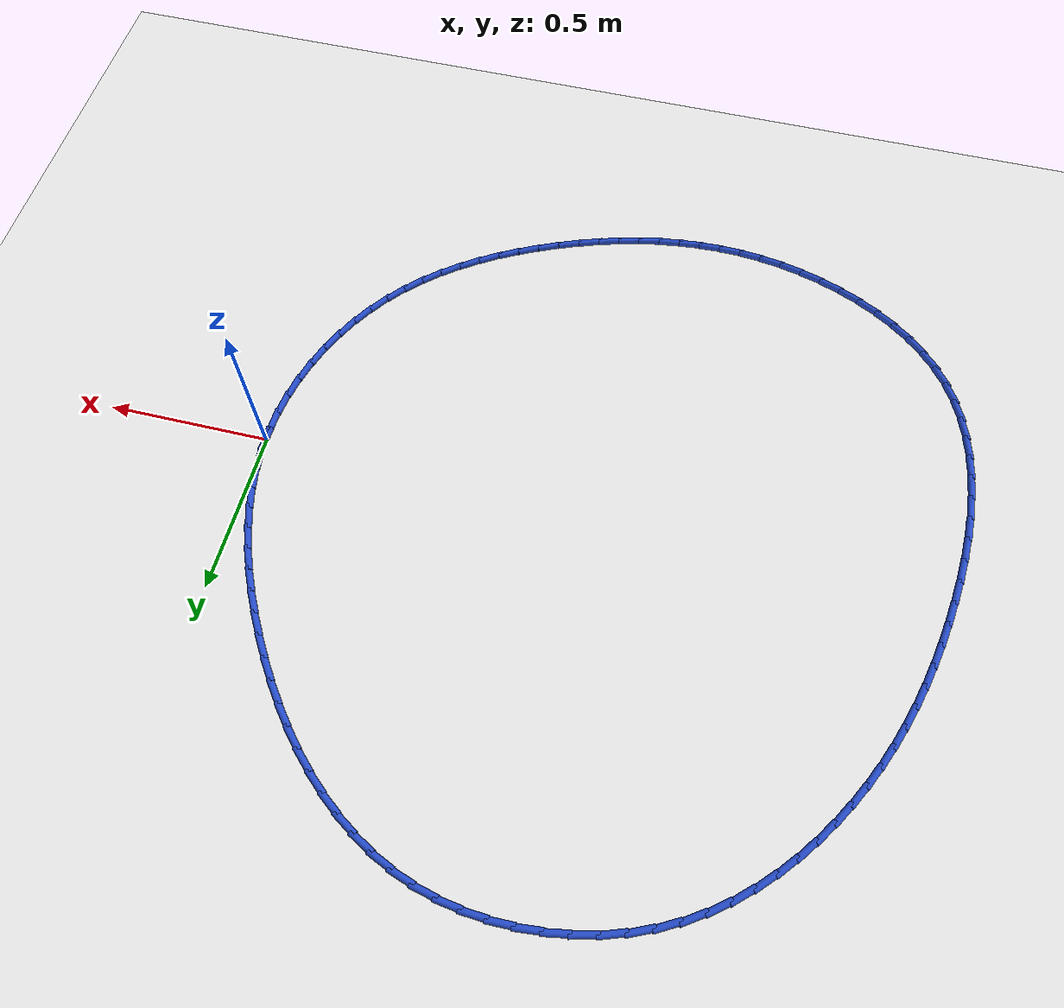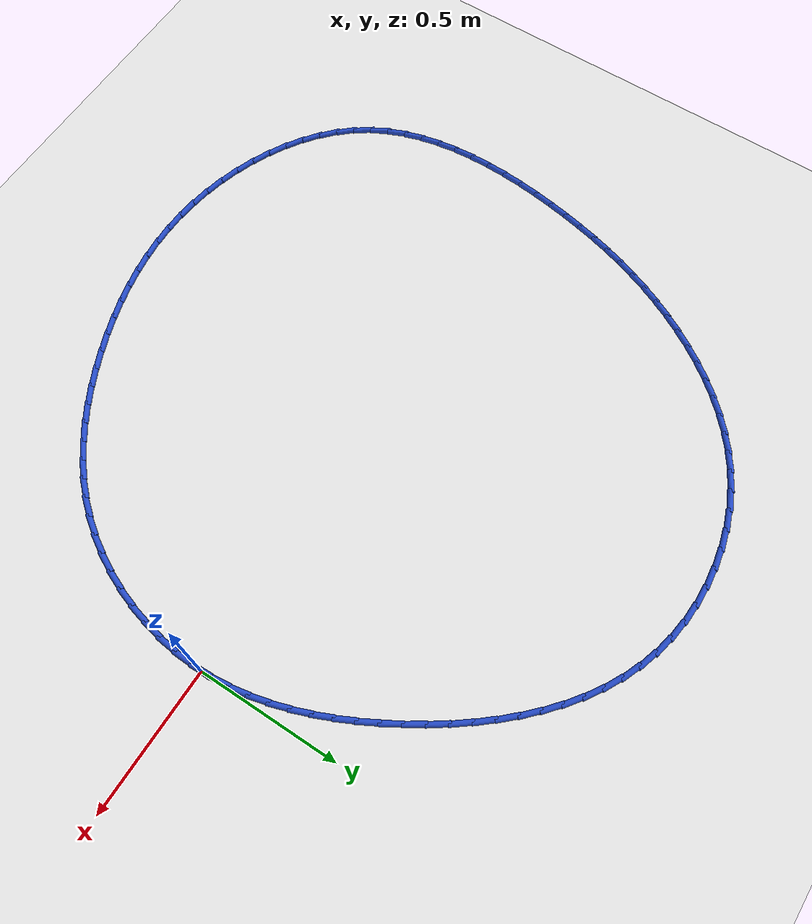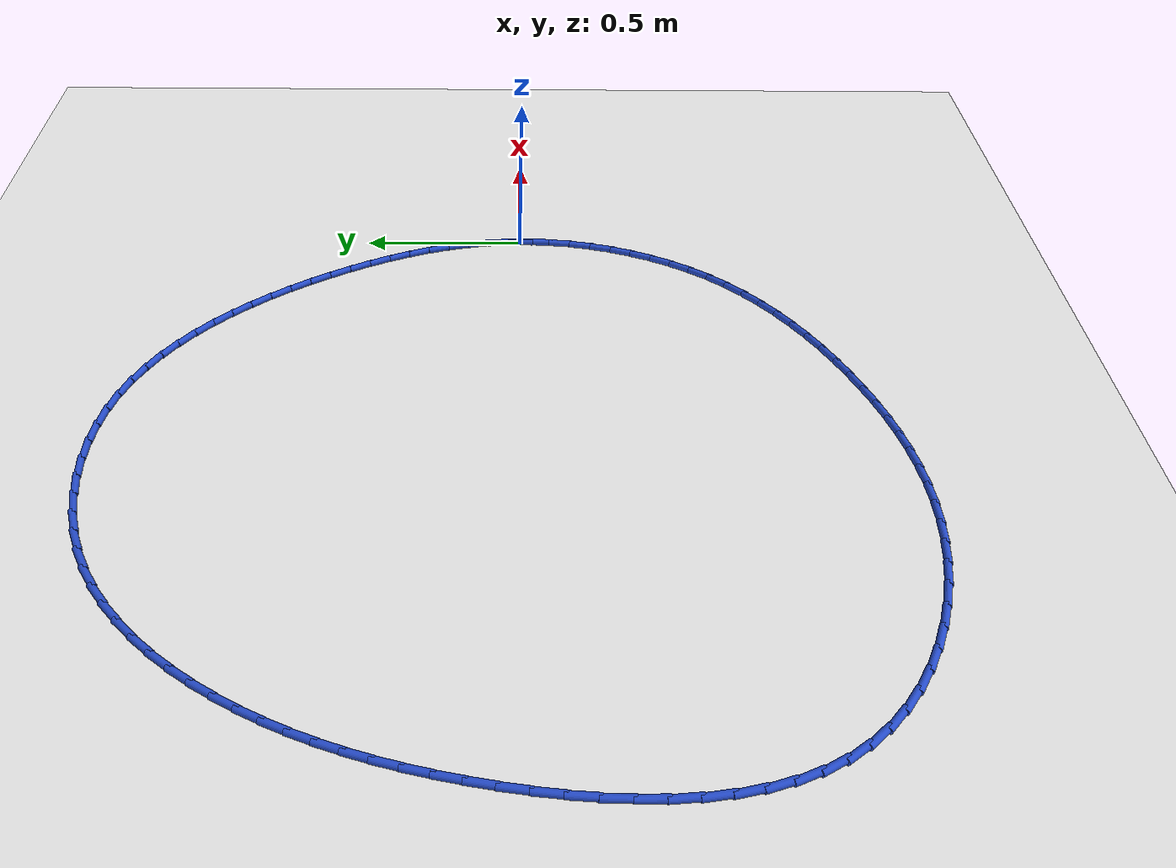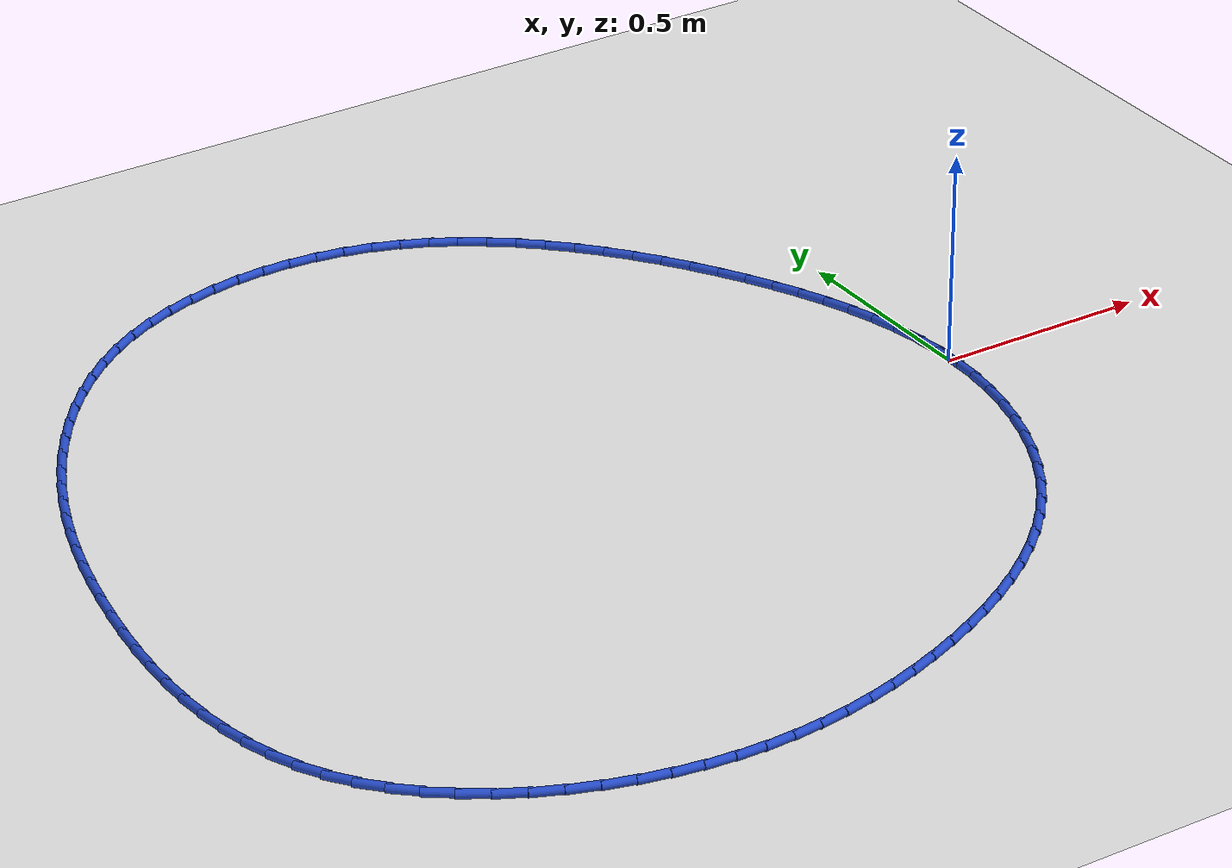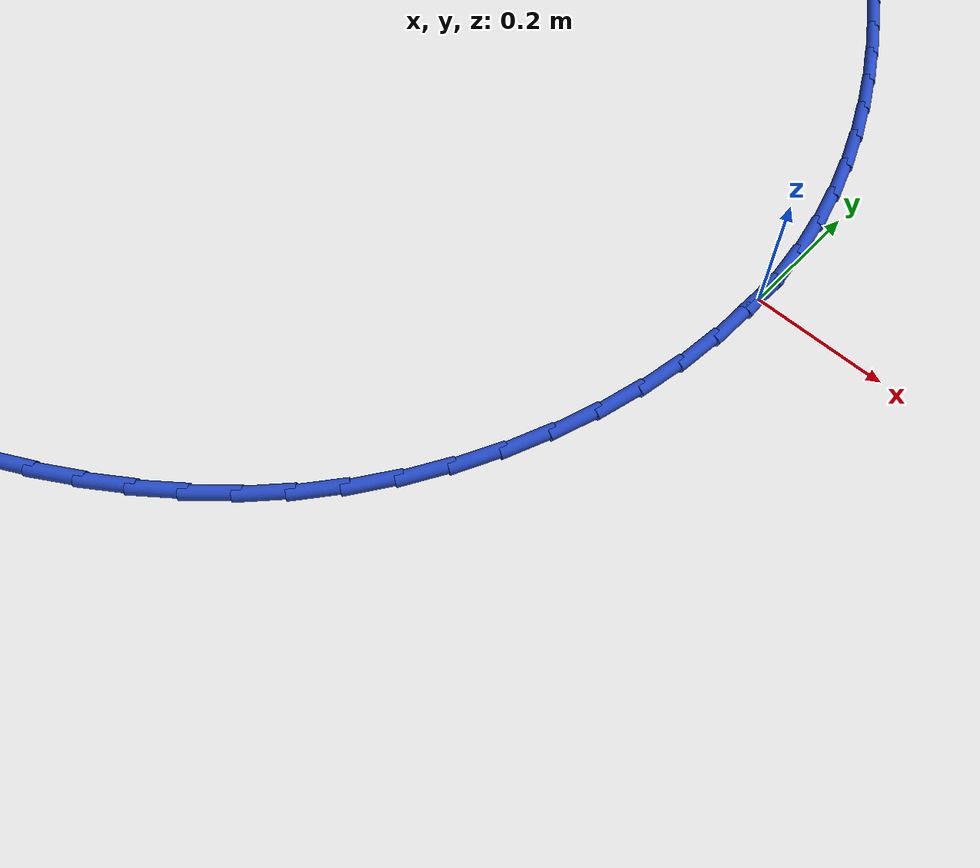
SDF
<sdf version="1.6">
 <world name="default">
  <light name="sun" type="directional">
   <pose>0 0 10 0 -0 0</pose>
   <diffuse>0.8 0.8 0.8 1</diffuse>
   <specular>0.2 0.2 0.2 1</specular>
   <attenuation>
    <range>1000</range>
    <constant>0.9</constant>
    <linear>0.01</linear>
    <quadratic>0.001</quadratic>
   </attenuation>
   <direction>-0.5 0.1 -0.9</direction>
  </light>
  <model name="ground_plane">
   <static>1</static>
   <link name="link">
    <collision name="collision">
     <geometry><plane><normal>0 0 1</normal><size>100 100</size></plane></geometry>
     <surface><friction><ode><mu>100</mu><mu2>50</mu2></ode></friction></surface>
    </collision>
    <visual name="visual">
     <cast_shadows>0</cast_shadows>
     <geometry><plane><normal>0 0 1</normal><size>100 100</size></plane></geometry>
     <material>
      <script><uri>file://media/materials/scripts/gazebo.material</uri><name>Gazebo/WhiteGlow</name></script>
     </material>
    </visual>
   </link>
  </model>
  <gravity>0 0 -9.8</gravity>
  <magnetic_field>6e-06 2.3e-05 -4.2e-05</magnetic_field>
  <atmosphere type="adiabatic"/>
  <physics name="default_physics" default="0" type="ode">
   <max_step_size>0.001</max_step_size>
   <real_time_factor>1</real_time_factor>
   <real_time_update_rate>1000</real_time_update_rate>
  </physics>
  <scene><ambient>0.4 0.4 0.4 1</ambient><background>0.7 0.7 0.7 1</background><shadows>1</shadows></scene>
  <spherical_coordinates>
   <surface_model>EARTH_WGS84</surface_model>
   <latitude_deg>0</latitude_deg>
   <longitude_deg>0</longitude_deg>
   <elevation>0</elevation>
   <heading_deg>0</heading_deg>
  </spherical_coordinates>
  <model name="line">
   <link name="link_0">
    <pose>4.5102810375396984e-17 2.7755575615628914e-17 0.01 0 1.57 -1.5138790250780465</pose>
    <collision name="collision">
     <geometry><cylinder><radius>0.01</radius><length>0.08</length></cylinder></geometry>
    </collision>
    <visual name="visual">
     <material>
      <script><name>Gazebo/Blue</name><uri>file://media/materials/scripts/gazebo.material</uri></script>
     </material>
     <geometry><cylinder><radius>0.01</radius><length>0.08</length></cylinder></geometry>
    </visual>
   </link>
   <link name="link_1">
    <pose>-0.0037908062595033852 0.06653006593493406 0.01 0 1.57 -1.440616513487576</pose>
    <collision name="collision">
     <geometry><cylinder><radius>0.01</radius><length>0.08</length></cylinder></geometry>
    </collision>
    <visual name="visual">
     <material>
      <script><name>Gazebo/Blue</name><uri>file://media/materials/scripts/gazebo.material</uri></script>
     </material>
     <geometry><cylinder><radius>0.01</radius><length>0.08</length></cylinder></geometry>
    </visual>
   </link>
   <link name="link_2">
    <pose>-0.012412451523280566 0.1323842631431642 0.01 0 1.57 -1.3717595087751593</pose>
    <collision name="collision">
     <geometry><cylinder><radius>0.01</radius><length>0.08</length></cylinder></geometry>
    </collision>
    <visual name="visual">
     <material>
      <script><name>Gazebo/Blue</name><uri>file://media/materials/scripts/gazebo.material</uri></script>
     </material>
     <geometry><cylinder><radius>0.01</radius><length>0.08</length></cylinder></geometry>
    </visual>
   </link>
   <link name="link_3">
    <pose>-0.025554663022745675 0.19753907107491728 0.01 0 1.57 -1.3077226489138265</pose>
    <collision name="collision">
     <geometry><cylinder><radius>0.01</radius><length>0.08</length></cylinder></geometry>
    </collision>
    <visual name="visual">
     <material>
      <script><name>Gazebo/Blue</name><uri>file://media/materials/scripts/gazebo.material</uri></script>
     </material>
     <geometry><cylinder><radius>0.01</radius><length>0.08</length></cylinder></geometry>
    </visual>
   </link>
   <link name="link_4">
    <pose>-0.04290716798931296 0.26197096918042034 0.01 0 1.57 -1.2487061292971016</pose>
    <collision name="collision">
     <geometry><cylinder><radius>0.01</radius><length>0.08</length></cylinder></geometry>
    </collision>
    <visual name="visual">
     <material>
      <script><name>Gazebo/Blue</name><uri>file://media/materials/scripts/gazebo.material</uri></script>
     </material>
     <geometry><cylinder><radius>0.01</radius><length>0.08</length></cylinder></geometry>
    </visual>
   </link>
   <link name="link_5">
    <pose>-0.06415969365439661 0.32565643690990026 0.01 0 1.57 -1.194736349183516</pose>
    <collision name="collision">
     <geometry><cylinder><radius>0.01</radius><length>0.08</length></cylinder></geometry>
    </collision>
    <visual name="visual">
     <material>
      <script><name>Gazebo/Blue</name><uri>file://media/materials/scripts/gazebo.material</uri></script>
     </material>
     <geometry><cylinder><radius>0.01</radius><length>0.08</length></cylinder></geometry>
    </visual>
   </link>
   <link name="link_6">
    <pose>-0.08900196724941087 0.388571953713584 0.01 0 1.57 -1.1457113877017253</pose>
    <collision name="collision">
     <geometry><cylinder><radius>0.01</radius><length>0.08</length></cylinder></geometry>
    </collision>
    <visual name="visual">
     <material>
      <script><name>Gazebo/Blue</name><uri>file://media/materials/scripts/gazebo.material</uri></script>
     </material>
     <geometry><cylinder><radius>0.01</radius><length>0.08</length></cylinder></geometry>
    </visual>
   </link>
   <link name="link_7">
    <pose>-0.11712371600576997 0.4506939990416985 0.01 0 1.57 -1.1014438807822047</pose>
    <collision name="collision">
     <geometry><cylinder><radius>0.01</radius><length>0.08</length></cylinder></geometry>
    </collision>
    <visual name="visual">
     <material>
      <script><name>Gazebo/Blue</name><uri>file://media/materials/scripts/gazebo.material</uri></script>
     </material>
     <geometry><cylinder><radius>0.01</radius><length>0.08</length></cylinder></geometry>
    </visual>
   </link>
   <link name="link_8">
    <pose>-0.14821466715488807 0.5119990523444707 0.01 0 1.57 -1.061697316212925</pose>
    <collision name="collision">
     <geometry><cylinder><radius>0.01</radius><length>0.08</length></cylinder></geometry>
    </collision>
    <visual name="visual">
     <material>
      <script><name>Gazebo/Blue</name><uri>file://media/materials/scripts/gazebo.material</uri></script>
     </material>
     <geometry><cylinder><radius>0.01</radius><length>0.08</length></cylinder></geometry>
    </visual>
   </link>
   <link name="link_9">
    <pose>-0.18196454792817943 0.5724635930721276 0.01 0 1.57 -1.0257608228890085</pose>
    <collision name="collision">
     <geometry><cylinder><radius>0.01</radius><length>0.08</length></cylinder></geometry>
    </collision>
    <visual name="visual">
     <material>
      <script><name>Gazebo/Blue</name><uri>file://media/materials/scripts/gazebo.material</uri></script>
     </material>
     <geometry><cylinder><radius>0.01</radius><length>0.08</length></cylinder></geometry>
    </visual>
   </link>
   <link name="link_10">
    <pose>-0.21808481513083838 0.6320389690984313 0.01 0 1.57 -0.9893192136138773</pose>
    <collision name="collision">
     <geometry><cylinder><radius>0.01</radius><length>0.08</length></cylinder></geometry>
    </collision>
    <visual name="visual">
     <material>
      <script><name>Gazebo/Blue</name><uri>file://media/materials/scripts/gazebo.material</uri></script>
     </material>
     <geometry><cylinder><radius>0.01</radius><length>0.08</length></cylinder></geometry>
    </visual>
   </link>
   <link name="link_11">
    <pose>-0.25647967868958976 0.690453597564049 0.01 0 1.57 -0.9498937773330084</pose>
    <collision name="collision">
     <geometry><cylinder><radius>0.01</radius><length>0.08</length></cylinder></geometry>
    </collision>
    <visual name="visual">
     <material>
      <script><name>Gazebo/Blue</name><uri>file://media/materials/scripts/gazebo.material</uri></script>
     </material>
     <geometry><cylinder><radius>0.01</radius><length>0.08</length></cylinder></geometry>
    </visual>
   </link>
   <link name="link_12">
    <pose>-0.2971541538646825 0.7473193080974794 0.01 0 1.57 -0.9070532457685015</pose>
    <collision name="collision">
     <geometry><cylinder><radius>0.01</radius><length>0.08</length></cylinder></geometry>
    </collision>
    <visual name="visual">
     <material>
      <script><name>Gazebo/Blue</name><uri>file://media/materials/scripts/gazebo.material</uri></script>
     </material>
     <geometry><cylinder><radius>0.01</radius><length>0.08</length></cylinder></geometry>
    </visual>
   </link>
   <link name="link_13">
    <pose>-0.34011413665101575 0.8022469117039169 0.01 0 1.57 -0.8603600837108331</pose>
    <collision name="collision">
     <geometry><cylinder><radius>0.01</radius><length>0.08</length></cylinder></geometry>
    </collision>
    <visual name="visual">
     <material>
      <script><name>Gazebo/Blue</name><uri>file://media/materials/scripts/gazebo.material</uri></script>
     </material>
     <geometry><cylinder><radius>0.01</radius><length>0.08</length></cylinder></geometry>
    </visual>
   </link>
   <link name="link_14">
    <pose>-0.38536552304348876 0.8548472193885576 0.01 0 1.57 -0.8093602870752454</pose>
    <collision name="collision">
     <geometry><cylinder><radius>0.01</radius><length>0.08</length></cylinder></geometry>
    </collision>
    <visual name="visual">
     <material>
      <script><name>Gazebo/Blue</name><uri>file://media/materials/scripts/gazebo.material</uri></script>
     </material>
     <geometry><cylinder><radius>0.01</radius><length>0.08</length></cylinder></geometry>
    </visual>
   </link>
   <link name="link_15">
    <pose>-0.4329142090370003 0.9047310421565955 0.01 0 1.57 -0.753599594689291</pose>
    <collision name="collision">
     <geometry><cylinder><radius>0.01</radius><length>0.08</length></cylinder></geometry>
    </collision>
    <visual name="visual">
     <material>
      <script><name>Gazebo/Blue</name><uri>file://media/materials/scripts/gazebo.material</uri></script>
     </material>
     <geometry><cylinder><radius>0.01</radius><length>0.08</length></cylinder></geometry>
    </visual>
   </link>
   <link name="link_16">
    <pose>-0.48276609062645 0.9515091910132265 0.01 0 1.57 -0.6926506569874684</pose>
    <collision name="collision">
     <geometry><cylinder><radius>0.01</radius><length>0.08</length></cylinder></geometry>
    </collision>
    <visual name="visual">
     <material>
      <script><name>Gazebo/Blue</name><uri>file://media/materials/scripts/gazebo.material</uri></script>
     </material>
     <geometry><cylinder><radius>0.01</radius><length>0.08</length></cylinder></geometry>
    </visual>
   </link>
   <link name="link_17">
    <pose>-0.5349270638067367 0.9947924769636458 0.01 0 1.57 -0.6261540858754838</pose>
    <collision name="collision">
     <geometry><cylinder><radius>0.01</radius><length>0.08</length></cylinder></geometry>
    </collision>
    <visual name="visual">
     <material>
      <script><name>Gazebo/Blue</name><uri>file://media/materials/scripts/gazebo.material</uri></script>
     </material>
     <geometry><cylinder><radius>0.01</radius><length>0.08</length></cylinder></geometry>
    </visual>
   </link>
   <link name="link_18">
    <pose>-0.5894030245727596 1.034191711013048 0.01 0 1.57 -0.5538751374664752</pose>
    <collision name="collision">
     <geometry><cylinder><radius>0.01</radius><length>0.08</length></cylinder></geometry>
    </collision>
    <visual name="visual">
     <material>
      <script><name>Gazebo/Blue</name><uri>file://media/materials/scripts/gazebo.material</uri></script>
     </material>
     <geometry><cylinder><radius>0.01</radius><length>0.08</length></cylinder></geometry>
    </visual>
   </link>
   <link name="link_19">
    <pose>-0.6461998689194178 1.0693177041666289 0.01 0 1.57 -0.4757745968063222</pose>
    <collision name="collision">
     <geometry><cylinder><radius>0.01</radius><length>0.08</length></cylinder></geometry>
    </collision>
    <visual name="visual">
     <material>
      <script><name>Gazebo/Blue</name><uri>file://media/materials/scripts/gazebo.material</uri></script>
     </material>
     <geometry><cylinder><radius>0.01</radius><length>0.08</length></cylinder></geometry>
    </visual>
   </link>
   <link name="link_20">
    <pose>-0.7053234928416107 1.0997812674295833 0.01 0 1.57 -0.39208659255169137</pose>
    <collision name="collision">
     <geometry><cylinder><radius>0.01</radius><length>0.08</length></cylinder></geometry>
    </collision>
    <visual name="visual">
     <material>
      <script><name>Gazebo/Blue</name><uri>file://media/materials/scripts/gazebo.material</uri></script>
     </material>
     <geometry><cylinder><radius>0.01</radius><length>0.08</length></cylinder></geometry>
    </visual>
   </link>
   <link name="link_21">
    <pose>-0.7667797923342371 1.1251932118071062 0.01 0 1.57 -0.3034933626081562</pose>
    <collision name="collision">
     <geometry><cylinder><radius>0.01</radius><length>0.08</length></cylinder></geometry>
    </collision>
    <visual name="visual">
     <material>
      <script><name>Gazebo/Blue</name><uri>file://media/materials/scripts/gazebo.material</uri></script>
     </material>
     <geometry><cylinder><radius>0.01</radius><length>0.08</length></cylinder></geometry>
    </visual>
   </link>
   <link name="link_22">
    <pose>-0.8305679590949822 1.1451696272609688 0.01 0 1.57 -0.21448057111811347</pose>
    <collision name="collision">
     <geometry><cylinder><radius>0.01</radius><length>0.08</length></cylinder></geometry>
    </collision>
    <visual name="visual">
     <material>
      <script><name>Gazebo/Blue</name><uri>file://media/materials/scripts/gazebo.material</uri></script>
     </material>
     <geometry><cylinder><radius>0.01</radius><length>0.08</length></cylinder></geometry>
    </visual>
   </link>
   <link name="link_23">
    <pose>-0.8964426183489318 1.1595191751362597 0.01 0 1.57 -0.12944275704404187</pose>
    <collision name="collision">
     <geometry><cylinder><radius>0.01</radius><length>0.08</length></cylinder></geometry>
    </collision>
    <visual name="visual">
     <material>
      <script><name>Gazebo/Blue</name><uri>file://media/materials/scripts/gazebo.material</uri></script>
     </material>
     <geometry><cylinder><radius>0.01</radius><length>0.08</length></cylinder></geometry>
    </visual>
   </link>
   <link name="link_24">
    <pose>-0.963849687256373 1.1682935931836278 0.01 0 1.57 -0.047744675560598845</pose>
    <collision name="collision">
     <geometry><cylinder><radius>0.01</radius><length>0.08</length></cylinder></geometry>
    </collision>
    <visual name="visual">
     <material>
      <script><name>Gazebo/Blue</name><uri>file://media/materials/scripts/gazebo.material</uri></script>
     </material>
     <geometry><cylinder><radius>0.01</radius><length>0.08</length></cylinder></geometry>
    </visual>
   </link>
   <link name="link_25">
    <pose>-1.0322153318207605 1.17156017119384 0.01 0 1.57 0.03161070363495633</pose>
    <collision name="collision">
     <geometry><cylinder><radius>0.01</radius><length>0.08</length></cylinder></geometry>
    </collision>
    <visual name="visual">
     <material>
      <script><name>Gazebo/Blue</name><uri>file://media/materials/scripts/gazebo.material</uri></script>
     </material>
     <geometry><cylinder><radius>0.01</radius><length>0.08</length></cylinder></geometry>
    </visual>
   </link>
   <link name="link_26">
    <pose>-1.1009657180455479 1.1693861989576608 0.01 0 1.57 0.10963864835037476</pose>
    <collision name="collision">
     <geometry><cylinder><radius>0.01</radius><length>0.08</length></cylinder></geometry>
    </collision>
    <visual name="visual">
     <material>
      <script><name>Gazebo/Blue</name><uri>file://media/materials/scripts/gazebo.material</uri></script>
     </material>
     <geometry><cylinder><radius>0.01</radius><length>0.08</length></cylinder></geometry>
    </visual>
   </link>
   <link name="link_27">
    <pose>-1.1695270119341914 1.1618389662658597 0.01 0 1.57 0.18735639007442112</pose>
    <collision name="collision">
     <geometry><cylinder><radius>0.01</radius><length>0.08</length></cylinder></geometry>
    </collision>
    <visual name="visual">
     <material>
      <script><name>Gazebo/Blue</name><uri>file://media/materials/scripts/gazebo.material</uri></script>
     </material>
     <geometry><cylinder><radius>0.01</radius><length>0.08</length></cylinder></geometry>
    </visual>
   </link>
   <link name="link_28">
    <pose>-1.2373253794901444 1.1489857629092013 0.01 0 1.57 0.26577570926887256</pose>
    <collision name="collision">
     <geometry><cylinder><radius>0.01</radius><length>0.08</length></cylinder></geometry>
    </collision>
    <visual name="visual">
     <material>
      <script><name>Gazebo/Blue</name><uri>file://media/materials/scripts/gazebo.material</uri></script>
     </material>
     <geometry><cylinder><radius>0.01</radius><length>0.08</length></cylinder></geometry>
    </visual>
   </link>
   <link name="link_29">
    <pose>-1.303786986716862 1.1308938786784526 0.01 0 1.57 0.3458971698614333</pose>
    <collision name="collision">
     <geometry><cylinder><radius>0.01</radius><length>0.08</length></cylinder></geometry>
    </collision>
    <visual name="visual">
     <material>
      <script><name>Gazebo/Blue</name><uri>file://media/materials/scripts/gazebo.material</uri></script>
     </material>
     <geometry><cylinder><radius>0.01</radius><length>0.08</length></cylinder></geometry>
    </visual>
   </link>
   <link name="link_30">
    <pose>-1.3683379996177985 1.1076306033643795 0.01 0 1.57 0.42869914108706814</pose>
    <collision name="collision">
     <geometry><cylinder><radius>0.01</radius><length>0.08</length></cylinder></geometry>
    </collision>
    <visual name="visual">
     <material>
      <script><name>Gazebo/Blue</name><uri>file://media/materials/scripts/gazebo.material</uri></script>
     </material>
     <geometry><cylinder><radius>0.01</radius><length>0.08</length></cylinder></geometry>
    </visual>
   </link>
   <link name="link_31">
    <pose>-1.4304045841964093 1.0792632267577495 0.01 0 1.57 0.514240895334869</pose>
    <collision name="collision">
     <geometry><cylinder><radius>0.01</radius><length>0.08</length></cylinder></geometry>
    </collision>
    <visual name="visual">
     <material>
      <script><name>Gazebo/Blue</name><uri>file://media/materials/scripts/gazebo.material</uri></script>
     </material>
     <geometry><cylinder><radius>0.01</radius><length>0.08</length></cylinder></geometry>
    </visual>
   </link>
   <link name="link_32">
    <pose>-1.4894688483794822 1.045895474090629 0.01 0 1.57 0.597008880639296</pose>
    <collision name="collision">
     <geometry><cylinder><radius>0.01</radius><length>0.08</length></cylinder></geometry>
    </collision>
    <visual name="visual">
     <material>
      <script><name>Gazebo/Blue</name><uri>file://media/materials/scripts/gazebo.material</uri></script>
     </material>
     <geometry><cylinder><radius>0.01</radius><length>0.08</length></cylinder></geometry>
    </visual>
   </link>
   <link name="link_33">
    <pose>-1.5453946062446733 1.0078796789950977 0.01 0 1.57 0.6742708848020089</pose>
    <collision name="collision">
     <geometry><cylinder><radius>0.01</radius><length>0.08</length></cylinder></geometry>
    </collision>
    <visual name="visual">
     <material>
      <script><name>Gazebo/Blue</name><uri>file://media/materials/scripts/gazebo.material</uri></script>
     </material>
     <geometry><cylinder><radius>0.01</radius><length>0.08</length></cylinder></geometry>
    </visual>
   </link>
   <link name="link_34">
    <pose>-1.598205077951417 0.9656719976139645 0.01 0 1.57 0.745947647572981</pose>
    <collision name="collision">
     <geometry><cylinder><radius>0.01</radius><length>0.08</length></cylinder></geometry>
    </collision>
    <visual name="visual">
     <material>
      <script><name>Gazebo/Blue</name><uri>file://media/materials/scripts/gazebo.material</uri></script>
     </material>
     <geometry><cylinder><radius>0.01</radius><length>0.08</length></cylinder></geometry>
    </visual>
   </link>
   <link name="link_35">
    <pose>-1.6479240167145717 0.9197289332734824 0.01 0 1.57 0.8122061938033714</pose>
    <collision name="collision">
     <geometry><cylinder><radius>0.01</radius><length>0.08</length></cylinder></geometry>
    </collision>
    <visual name="visual">
     <material>
      <script><name>Gazebo/Blue</name><uri>file://media/materials/scripts/gazebo.material</uri></script>
     </material>
     <geometry><cylinder><radius>0.01</radius><length>0.08</length></cylinder></geometry>
    </visual>
   </link>
   <link name="link_36">
    <pose>-1.6945751757489973 0.8705069892999056 0.01 0 1.57 0.8733780844036618</pose>
    <collision name="collision">
     <geometry><cylinder><radius>0.01</radius><length>0.08</length></cylinder></geometry>
    </collision>
    <visual name="visual">
     <material>
      <script><name>Gazebo/Blue</name><uri>file://media/materials/scripts/gazebo.material</uri></script>
     </material>
     <geometry><cylinder><radius>0.01</radius><length>0.08</length></cylinder></geometry>
    </visual>
   </link>
   <link name="link_37">
    <pose>-1.7381823082695527 0.8184626690194859 0.01 0 1.57 0.9298972727719739</pose>
    <collision name="collision">
     <geometry><cylinder><radius>0.01</radius><length>0.08</length></cylinder></geometry>
    </collision>
    <visual name="visual">
     <material>
      <script><name>Gazebo/Blue</name><uri>file://media/materials/scripts/gazebo.material</uri></script>
     </material>
     <geometry><cylinder><radius>0.01</radius><length>0.08</length></cylinder></geometry>
    </visual>
   </link>
   <link name="link_38">
    <pose>-1.7787691674910981 0.7640524757584781 0.01 0 1.57 0.9822534925984464</pose>
    <collision name="collision">
     <geometry><cylinder><radius>0.01</radius><length>0.08</length></cylinder></geometry>
    </collision>
    <visual name="visual">
     <material>
      <script><name>Gazebo/Blue</name><uri>file://media/materials/scripts/gazebo.material</uri></script>
     </material>
     <geometry><cylinder><radius>0.01</radius><length>0.08</length></cylinder></geometry>
    </visual>
   </link>
   <link name="link_39">
    <pose>-1.8163595066284919 0.7077329128431347 0.01 0 1.57 1.0309610324845924</pose>
    <collision name="collision">
     <geometry><cylinder><radius>0.01</radius><length>0.08</length></cylinder></geometry>
    </collision>
    <visual name="visual">
     <material>
      <script><name>Gazebo/Blue</name><uri>file://media/materials/scripts/gazebo.material</uri></script>
     </material>
     <geometry><cylinder><radius>0.01</radius><length>0.08</length></cylinder></geometry>
    </visual>
   </link>
   <link name="link_40">
    <pose>-1.8509770788965936 0.649960483599709 0.01 0 1.57 1.0767021792855922</pose>
    <collision name="collision">
     <geometry><cylinder><radius>0.01</radius><length>0.08</length></cylinder></geometry>
    </collision>
    <visual name="visual">
     <material>
      <script><name>Gazebo/Blue</name><uri>file://media/materials/scripts/gazebo.material</uri></script>
     </material>
     <geometry><cylinder><radius>0.01</radius><length>0.08</length></cylinder></geometry>
    </visual>
   </link>
   <link name="link_41">
    <pose>-1.8826555807927532 0.5911505061282039 0.01 0 1.57 1.1209795610305064</pose>
    <collision name="collision">
     <geometry><cylinder><radius>0.01</radius><length>0.08</length></cylinder></geometry>
    </collision>
    <visual name="visual">
     <material>
      <script><name>Gazebo/Blue</name><uri>file://media/materials/scripts/gazebo.material</uri></script>
     </material>
     <geometry><cylinder><radius>0.01</radius><length>0.08</length></cylinder></geometry>
    </visual>
   </link>
   <link name="link_42">
    <pose>-1.9115062467062816 0.5313971354090732 0.01 0 1.57 1.1640523729611483</pose>
    <collision name="collision">
     <geometry><cylinder><radius>0.01</radius><length>0.08</length></cylinder></geometry>
    </collision>
    <visual name="visual">
     <material>
      <script><name>Gazebo/Blue</name><uri>file://media/materials/scripts/gazebo.material</uri></script>
     </material>
     <geometry><cylinder><radius>0.01</radius><length>0.08</length></cylinder></geometry>
    </visual>
   </link>
   <link name="link_43">
    <pose>-1.9376767146473106 0.4706437420755352 0.01 0 1.57 1.2055309007803707</pose>
    <collision name="collision">
     <geometry><cylinder><radius>0.01</radius><length>0.08</length></cylinder></geometry>
    </collision>
    <visual name="visual">
     <material>
      <script><name>Gazebo/Blue</name><uri>file://media/materials/scripts/gazebo.material</uri></script>
     </material>
     <geometry><cylinder><radius>0.01</radius><length>0.08</length></cylinder></geometry>
    </visual>
   </link>
   <link name="link_44">
    <pose>-1.9613148328416992 0.4088328260440795 0.01 0 1.57 1.2450706206895135</pose>
    <collision name="collision">
     <geometry><cylinder><radius>0.01</radius><length>0.08</length></cylinder></geometry>
    </collision>
    <visual name="visual">
     <material>
      <script><name>Gazebo/Blue</name><uri>file://media/materials/scripts/gazebo.material</uri></script>
     </material>
     <geometry><cylinder><radius>0.01</radius><length>0.08</length></cylinder></geometry>
    </visual>
   </link>
   <link name="link_45">
    <pose>-1.9825684495153066 0.34590688723119584 0.01 0 1.57 1.2823848568801948</pose>
    <collision name="collision">
     <geometry><cylinder><radius>0.01</radius><length>0.08</length></cylinder></geometry>
    </collision>
    <visual name="visual">
     <material>
      <script><name>Gazebo/Blue</name><uri>file://media/materials/scripts/gazebo.material</uri></script>
     </material>
     <geometry><cylinder><radius>0.01</radius><length>0.08</length></cylinder></geometry>
    </visual>
   </link>
   <link name="link_46">
    <pose>-2.0015854128939954 0.2818084255533738 0.01 0 1.57 1.3172492612114688</pose>
    <collision name="collision">
     <geometry><cylinder><radius>0.01</radius><length>0.08</length></cylinder></geometry>
    </collision>
    <visual name="visual">
     <material>
      <script><name>Gazebo/Blue</name><uri>file://media/materials/scripts/gazebo.material</uri></script>
     </material>
     <geometry><cylinder><radius>0.01</radius><length>0.08</length></cylinder></geometry>
    </visual>
   </link>
   <link name="link_47">
    <pose>-2.0185135712036244 0.21647994092710324 0.01 0 1.57 1.3495018915070425</pose>
    <collision name="collision">
     <geometry><cylinder><radius>0.01</radius><length>0.08</length></cylinder></geometry>
    </collision>
    <visual name="visual">
     <material>
      <script><name>Gazebo/Blue</name><uri>file://media/materials/scripts/gazebo.material</uri></script>
     </material>
     <geometry><cylinder><radius>0.01</radius><length>0.08</length></cylinder></geometry>
    </visual>
   </link>
   <link name="link_48">
    <pose>-2.0335007726700542 0.14986393326887398 0.01 0 1.57 1.3790397305851214</pose>
    <collision name="collision">
     <geometry><cylinder><radius>0.01</radius><length>0.08</length></cylinder></geometry>
    </collision>
    <visual name="visual">
     <material>
      <script><name>Gazebo/Blue</name><uri>file://media/materials/scripts/gazebo.material</uri></script>
     </material>
     <geometry><cylinder><radius>0.01</radius><length>0.08</length></cylinder></geometry>
    </visual>
   </link>
   <link name="link_49">
    <pose>-2.046694864430353 0.08190290348550551 0.01 0 1.57 1.406965246591515</pose>
    <collision name="collision">
     <geometry><cylinder><radius>0.01</radius><length>0.08</length></cylinder></geometry>
    </collision>
    <visual name="visual">
     <material>
      <script><name>Gazebo/Blue</name><uri>file://media/materials/scripts/gazebo.material</uri></script>
     </material>
     <geometry><cylinder><radius>0.01</radius><length>0.08</length></cylinder></geometry>
    </visual>
   </link>
   <link name="link_50">
    <pose>-2.0581470067742105 0.012627295700135637 0.01 0 1.57 1.437739512200554</pose>
    <collision name="collision">
     <geometry><cylinder><radius>0.01</radius><length>0.08</length></cylinder></geometry>
    </collision>
    <visual name="visual">
     <material>
      <script><name>Gazebo/Blue</name><uri>file://media/materials/scripts/gazebo.material</uri></script>
     </material>
     <geometry><cylinder><radius>0.01</radius><length>0.08</length></cylinder></geometry>
    </visual>
   </link>
   <link name="link_51">
    <pose>-2.06754730512021 -0.05760404217916781 0.01 0 1.57 1.4728192765135144</pose>
    <collision name="collision">
     <geometry><cylinder><radius>0.01</radius><length>0.08</length></cylinder></geometry>
    </collision>
    <visual name="visual">
     <material>
      <script><name>Gazebo/Blue</name><uri>file://media/materials/scripts/gazebo.material</uri></script>
     </material>
     <geometry><cylinder><radius>0.01</radius><length>0.08</length></cylinder></geometry>
    </visual>
   </link>
   <link name="link_52">
    <pose>-2.0745016028982017 -0.12835562027592554 0.01 0 1.57 1.5127819704981198</pose>
    <collision name="collision">
     <geometry><cylinder><radius>0.01</radius><length>0.08</length></cylinder></geometry>
    </collision>
    <visual name="visual">
     <material>
      <script><name>Gazebo/Blue</name><uri>file://media/materials/scripts/gazebo.material</uri></script>
     </material>
     <geometry><cylinder><radius>0.01</radius><length>0.08</length></cylinder></geometry>
    </visual>
   </link>
   <link name="link_53">
    <pose>-2.0786157435380366 -0.19919194871365842 0.01 0 1.57 1.5583146088383473</pose>
    <collision name="collision">
     <geometry><cylinder><radius>0.01</radius><length>0.08</length></cylinder></geometry>
    </collision>
    <visual name="visual">
     <material>
      <script><name>Gazebo/Blue</name><uri>file://media/materials/scripts/gazebo.material</uri></script>
     </material>
     <geometry><cylinder><radius>0.01</radius><length>0.08</length></cylinder></geometry>
    </visual>
   </link>
   <link name="link_54">
    <pose>-2.0794955704695655 -0.2696775376158871 0.01 0 1.57 -1.5313810463463093</pose>
    <collision name="collision">
     <geometry><cylinder><radius>0.01</radius><length>0.08</length></cylinder></geometry>
    </collision>
    <visual name="visual">
     <material>
      <script><name>Gazebo/Blue</name><uri>file://media/materials/scripts/gazebo.material</uri></script>
     </material>
     <geometry><cylinder><radius>0.01</radius><length>0.08</length></cylinder></geometry>
    </visual>
   </link>
   <link name="link_55">
    <pose>-2.076746927122637 -0.3393768971061323 0.01 0 1.57 -1.4722337989647178</pose>
    <collision name="collision">
     <geometry><cylinder><radius>0.01</radius><length>0.08</length></cylinder></geometry>
    </collision>
    <visual name="visual">
     <material>
      <script><name>Gazebo/Blue</name><uri>file://media/materials/scripts/gazebo.material</uri></script>
     </material>
     <geometry><cylinder><radius>0.01</radius><length>0.08</length></cylinder></geometry>
    </visual>
   </link>
   <link name="link_56">
    <pose>-2.0699756569271037 -0.4078545373079147 0.01 0 1.57 -1.4049005427495669</pose>
    <collision name="collision">
     <geometry><cylinder><radius>0.01</radius><length>0.08</length></cylinder></geometry>
    </collision>
    <visual name="visual">
     <material>
      <script><name>Gazebo/Blue</name><uri>file://media/materials/scripts/gazebo.material</uri></script>
     </material>
     <geometry><cylinder><radius>0.01</radius><length>0.08</length></cylinder></geometry>
    </visual>
   </link>
   <link name="link_57">
    <pose>-2.0587876033128154 -0.47467496834475553 0.01 0 1.57 -1.3284794659420665</pose>
    <collision name="collision">
     <geometry><cylinder><radius>0.01</radius><length>0.08</length></cylinder></geometry>
    </collision>
    <visual name="visual">
     <material>
      <script><name>Gazebo/Blue</name><uri>file://media/materials/scripts/gazebo.material</uri></script>
     </material>
     <geometry><cylinder><radius>0.01</radius><length>0.08</length></cylinder></geometry>
    </visual>
   </link>
   <link name="link_58">
    <pose>-2.0427886097096217 -0.5394027003401743 0.01 0 1.57 -1.2422474703870596</pose>
    <collision name="collision">
     <geometry><cylinder><radius>0.01</radius><length>0.08</length></cylinder></geometry>
    </collision>
    <visual name="visual">
     <material>
      <script><name>Gazebo/Blue</name><uri>file://media/materials/scripts/gazebo.material</uri></script>
     </material>
     <geometry><cylinder><radius>0.01</radius><length>0.08</length></cylinder></geometry>
    </visual>
   </link>
   <link name="link_59">
    <pose>-2.0215845195473734 -0.6016022434176935 0.01 0 1.57 -1.1458777500665027</pose>
    <collision name="collision">
     <geometry><cylinder><radius>0.01</radius><length>0.08</length></cylinder></geometry>
    </collision>
    <visual name="visual">
     <material>
      <script><name>Gazebo/Blue</name><uri>file://media/materials/scripts/gazebo.material</uri></script>
     </material>
     <geometry><cylinder><radius>0.01</radius><length>0.08</length></cylinder></geometry>
    </visual>
   </link>
   <link name="link_60">
    <pose>-1.9947811762559204 -0.660838107700833 0.01 0 1.57 -1.0397159807467815</pose>
    <collision name="collision">
     <geometry><cylinder><radius>0.01</radius><length>0.08</length></cylinder></geometry>
    </collision>
    <visual name="visual">
     <material>
      <script><name>Gazebo/Blue</name><uri>file://media/materials/scripts/gazebo.material</uri></script>
     </material>
     <geometry><cylinder><radius>0.01</radius><length>0.08</length></cylinder></geometry>
    </visual>
   </link>
   <link name="link_61">
    <pose>-1.9619844232651136 -0.7166748033131135 0.01 0 1.57 -0.9265111738556004</pose>
    <collision name="collision">
     <geometry><cylinder><radius>0.01</radius><length>0.08</length></cylinder></geometry>
    </collision>
    <visual name="visual">
     <material>
      <script><name>Gazebo/Blue</name><uri>file://media/materials/scripts/gazebo.material</uri></script>
     </material>
     <geometry><cylinder><radius>0.01</radius><length>0.08</length></cylinder></geometry>
    </visual>
   </link>
   <link name="link_62">
    <pose>-1.9228946401829092 -0.7687094693226658 0.01 0 1.57 -0.8181576728683198</pose>
    <collision name="collision">
     <geometry><cylinder><radius>0.01</radius><length>0.08</length></cylinder></geometry>
    </collision>
    <visual name="visual">
     <material>
      <script><name>Gazebo/Blue</name><uri>file://media/materials/scripts/gazebo.material</uri></script>
     </material>
     <geometry><cylinder><radius>0.01</radius><length>0.08</length></cylinder></geometry>
    </visual>
   </link>
   <link name="link_63">
    <pose>-1.8778833343411743 -0.816770882989139 0.01 0 1.57 -0.7191684531809097</pose>
    <collision name="collision">
     <geometry><cylinder><radius>0.01</radius><length>0.08</length></cylinder></geometry>
    </collision>
    <visual name="visual">
     <material>
      <script><name>Gazebo/Blue</name><uri>file://media/materials/scripts/gazebo.material</uri></script>
     </material>
     <geometry><cylinder><radius>0.01</radius><length>0.08</length></cylinder></geometry>
    </visual>
   </link>
   <link name="link_64">
    <pose>-1.8276123610841837 -0.8607880345213857 0.01 0 1.57 -0.6287790294310488</pose>
    <collision name="collision">
     <geometry><cylinder><radius>0.01</radius><length>0.08</length></cylinder></geometry>
    </collision>
    <visual name="visual">
     <material>
      <script><name>Gazebo/Blue</name><uri>file://media/materials/scripts/gazebo.material</uri></script>
     </material>
     <geometry><cylinder><radius>0.01</radius><length>0.08</length></cylinder></geometry>
    </visual>
   </link>
   <link name="link_65">
    <pose>-1.7727447356521155 -0.900690314463664 0.01 0 1.57 -0.5458542490116941</pose>
    <collision name="collision">
     <geometry><cylinder><radius>0.01</radius><length>0.08</length></cylinder></geometry>
    </collision>
    <visual name="visual">
     <material>
      <script><name>Gazebo/Blue</name><uri>file://media/materials/scripts/gazebo.material</uri></script>
     </material>
     <geometry><cylinder><radius>0.01</radius><length>0.08</length></cylinder></geometry>
    </visual>
   </link>
   <link name="link_66">
    <pose>-1.7139434732851428 -0.9364071133602299 0.01 0 1.57 -0.4691071195949162</pose>
    <collision name="collision">
     <geometry><cylinder><radius>0.01</radius><length>0.08</length></cylinder></geometry>
    </collision>
    <visual name="visual">
     <material>
      <script><name>Gazebo/Blue</name><uri>file://media/materials/scripts/gazebo.material</uri></script>
     </material>
     <geometry><cylinder><radius>0.01</radius><length>0.08</length></cylinder></geometry>
    </visual>
   </link>
   <link name="link_67">
    <pose>-1.651871589223444 -0.9678678217553413 0.01 0 1.57 -0.3972155398905774</pose>
    <collision name="collision">
     <geometry><cylinder><radius>0.01</radius><length>0.08</length></cylinder></geometry>
    </collision>
    <visual name="visual">
     <material>
      <script><name>Gazebo/Blue</name><uri>file://media/materials/scripts/gazebo.material</uri></script>
     </material>
     <geometry><cylinder><radius>0.01</radius><length>0.08</length></cylinder></geometry>
    </visual>
   </link>
   <link name="link_68">
    <pose>-1.5871920987071926 -0.9950018301932548 0.01 0 1.57 -0.3288751041977239</pose>
    <collision name="collision">
     <geometry><cylinder><radius>0.01</radius><length>0.08</length></cylinder></geometry>
    </collision>
    <visual name="visual">
     <material>
      <script><name>Gazebo/Blue</name><uri>file://media/materials/scripts/gazebo.material</uri></script>
     </material>
     <geometry><cylinder><radius>0.01</radius><length>0.08</length></cylinder></geometry>
    </visual>
   </link>
   <link name="link_69">
    <pose>-1.5205680169765652 -1.017738529218228 0.01 0 1.57 -0.26280918474590753</pose>
    <collision name="collision">
     <geometry><cylinder><radius>0.01</radius><length>0.08</length></cylinder></geometry>
    </collision>
    <visual name="visual">
     <material>
      <script><name>Gazebo/Blue</name><uri>file://media/materials/scripts/gazebo.material</uri></script>
     </material>
     <geometry><cylinder><radius>0.01</radius><length>0.08</length></cylinder></geometry>
    </visual>
   </link>
   <link name="link_70">
    <pose>-1.4526623592717374 -1.0360073093745175 0.01 0 1.57 -0.19775206394959133</pose>
    <collision name="collision">
     <geometry><cylinder><radius>0.01</radius><length>0.08</length></cylinder></geometry>
    </collision>
    <visual name="visual">
     <material>
      <script><name>Gazebo/Blue</name><uri>file://media/materials/scripts/gazebo.material</uri></script>
     </material>
     <geometry><cylinder><radius>0.01</radius><length>0.08</length></cylinder></geometry>
    </visual>
   </link>
   <link name="link_71">
    <pose>-1.3841381408328863 -1.0497375612063806 0.01 0 1.57 -0.13249307028603624</pose>
    <collision name="collision">
     <geometry><cylinder><radius>0.01</radius><length>0.08</length></cylinder></geometry>
    </collision>
    <visual name="visual">
     <material>
      <script><name>Gazebo/Blue</name><uri>file://media/materials/scripts/gazebo.material</uri></script>
     </material>
     <geometry><cylinder><radius>0.01</radius><length>0.08</length></cylinder></geometry>
    </visual>
   </link>
   <link name="link_72">
    <pose>-1.3156421276027443 -1.0588662873979158 0.01 0 1.57 -0.06755428381245263</pose>
    <collision name="collision">
     <geometry><cylinder><radius>0.01</radius><length>0.08</length></cylinder></geometry>
    </collision>
    <visual name="visual">
     <material>
      <script><name>Gazebo/Blue</name><uri>file://media/materials/scripts/gazebo.material</uri></script>
     </material>
     <geometry><cylinder><radius>0.01</radius><length>0.08</length></cylinder></geometry>
    </visual>
   </link>
   <link name="link_73">
    <pose>-1.2475107556910099 -1.0634758676315013 0.01 0 1.57 -0.0044806910003020945</pose>
    <collision name="collision">
     <geometry><cylinder><radius>0.01</radius><length>0.08</length></cylinder></geometry>
    </collision>
    <visual name="visual">
     <material>
      <script><name>Gazebo/Blue</name><uri>file://media/materials/scripts/gazebo.material</uri></script>
     </material>
     <geometry><cylinder><radius>0.01</radius><length>0.08</length></cylinder></geometry>
    </visual>
   </link>
   <link name="link_74">
    <pose>-1.1798017365164302 -1.0637792528546726 0.01 0 1.57 0.05623574663987913</pose>
    <collision name="collision">
     <geometry><cylinder><radius>0.01</radius><length>0.08</length></cylinder></geometry>
    </collision>
    <visual name="visual">
     <material>
      <script><name>Gazebo/Blue</name><uri>file://media/materials/scripts/gazebo.material</uri></script>
     </material>
     <geometry><cylinder><radius>0.01</radius><length>0.08</length></cylinder></geometry>
    </visual>
   </link>
   <link name="link_75">
    <pose>-1.1125628760985546 -1.0599940342945957 0.01 0 1.57 0.11425040625950034</pose>
    <collision name="collision">
     <geometry><cylinder><radius>0.01</radius><length>0.08</length></cylinder></geometry>
    </collision>
    <visual name="visual">
     <material>
      <script><name>Gazebo/Blue</name><uri>file://media/materials/scripts/gazebo.material</uri></script>
     </material>
     <geometry><cylinder><radius>0.01</radius><length>0.08</length></cylinder></geometry>
    </visual>
   </link>
   <link name="link_76">
    <pose>-1.0458419804569314 -1.0523378031784358 0.01 0 1.57 0.16931970003650818</pose>
    <collision name="collision">
     <geometry><cylinder><radius>0.01</radius><length>0.08</length></cylinder></geometry>
    </collision>
    <visual name="visual">
     <material>
      <script><name>Gazebo/Blue</name><uri>file://media/materials/scripts/gazebo.material</uri></script>
     </material>
     <geometry><cylinder><radius>0.01</radius><length>0.08</length></cylinder></geometry>
    </visual>
   </link>
   <link name="link_77">
    <pose>-0.9796868556111084 -1.0410281507333587 0.01 0 1.57 0.22129460827467354</pose>
    <collision name="collision">
     <geometry><cylinder><radius>0.01</radius><length>0.08</length></cylinder></geometry>
    </collision>
    <visual name="visual">
     <material>
      <script><name>Gazebo/Blue</name><uri>file://media/materials/scripts/gazebo.material</uri></script>
     </material>
     <geometry><cylinder><radius>0.01</radius><length>0.08</length></cylinder></geometry>
    </visual>
   </link>
   <link name="link_78">
    <pose>-0.9141453075806335 -1.0262826681865282 0.01 0 1.57 0.270108914154345</pose>
    <collision name="collision">
     <geometry><cylinder><radius>0.01</radius><length>0.08</length></cylinder></geometry>
    </collision>
    <visual name="visual">
     <material>
      <script><name>Gazebo/Blue</name><uri>file://media/materials/scripts/gazebo.material</uri></script>
     </material>
     <geometry><cylinder><radius>0.01</radius><length>0.08</length></cylinder></geometry>
    </visual>
   </link>
   <link name="link_79">
    <pose>-0.8492651423850555 -1.0083189467651108 0.01 0 1.57 0.3157646538650471</pose>
    <collision name="collision">
     <geometry><cylinder><radius>0.01</radius><length>0.08</length></cylinder></geometry>
    </collision>
    <visual name="visual">
     <material>
      <script><name>Gazebo/Blue</name><uri>file://media/materials/scripts/gazebo.material</uri></script>
     </material>
     <geometry><cylinder><radius>0.01</radius><length>0.08</length></cylinder></geometry>
    </visual>
   </link>
   <link name="link_80">
    <pose>-0.7850941660439219 -0.9873545776962714 0.01 0 1.57 0.3583168830485391</pose>
    <collision name="collision">
     <geometry><cylinder><radius>0.01</radius><length>0.08</length></cylinder></geometry>
    </collision>
    <visual name="visual">
     <material>
      <script><name>Gazebo/Blue</name><uri>file://media/materials/scripts/gazebo.material</uri></script>
     </material>
     <geometry><cylinder><radius>0.01</radius><length>0.08</length></cylinder></geometry>
    </visual>
   </link>
   <link name="link_81">
    <pose>-0.7216801845767815 -0.9636071522071756 0.01 0 1.57 0.39799479941448496</pose>
    <collision name="collision">
     <geometry><cylinder><radius>0.01</radius><length>0.08</length></cylinder></geometry>
    </collision>
    <visual name="visual">
     <material>
      <script><name>Gazebo/Blue</name><uri>file://media/materials/scripts/gazebo.material</uri></script>
     </material>
     <geometry><cylinder><radius>0.01</radius><length>0.08</length></cylinder></geometry>
    </visual>
   </link>
   <link name="link_82">
    <pose>-0.6590773791688842 -0.9372869558601254 0.01 0 1.57 0.43790861509707213</pose>
    <collision name="collision">
     <geometry><cylinder><radius>0.01</radius><length>0.08</length></cylinder></geometry>
    </collision>
    <visual name="visual">
     <material>
      <script><name>Gazebo/Blue</name><uri>file://media/materials/scripts/gazebo.material</uri></script>
     </material>
     <geometry><cylinder><radius>0.01</radius><length>0.08</length></cylinder></geometry>
    </visual>
   </link>
   <link name="link_83">
    <pose>-0.5974790279526159 -0.9084448751167757 0.01 0 1.57 0.48121215920877075</pose>
    <collision name="collision">
     <geometry><cylinder><radius>0.01</radius><length>0.08</length></cylinder></geometry>
    </collision>
    <visual name="visual">
     <material>
      <script><name>Gazebo/Blue</name><uri>file://media/materials/scripts/gazebo.material</uri></script>
     </material>
     <geometry><cylinder><radius>0.01</radius><length>0.08</length></cylinder></geometry>
    </visual>
   </link>
   <link name="link_84">
    <pose>-0.5372134460143032 -0.8769770499151894 0.01 0 1.57 0.5283429708599848</pose>
    <collision name="collision">
     <geometry><cylinder><radius>0.01</radius><length>0.08</length></cylinder></geometry>
    </collision>
    <visual name="visual">
     <material>
      <script><name>Gazebo/Blue</name><uri>file://media/materials/scripts/gazebo.material</uri></script>
     </material>
     <geometry><cylinder><radius>0.01</radius><length>0.08</length></cylinder></geometry>
    </visual>
   </link>
   <link name="link_85">
    <pose>-0.4786145113839604 -0.8427732452999492 0.01 0 1.57 0.5796108310427426</pose>
    <collision name="collision">
     <geometry><cylinder><radius>0.01</radius><length>0.08</length></cylinder></geometry>
    </collision>
    <visual name="visual">
     <material>
      <script><name>Gazebo/Blue</name><uri>file://media/materials/scripts/gazebo.material</uri></script>
     </material>
     <geometry><cylinder><radius>0.01</radius><length>0.08</length></cylinder></geometry>
    </visual>
   </link>
   <link name="link_86">
    <pose>-0.42201610209160345 -0.8057232263156392 0.01 0 1.57 0.6352949857372292</pose>
    <collision name="collision">
     <geometry><cylinder><radius>0.01</radius><length>0.08</length></cylinder></geometry>
    </collision>
    <visual name="visual">
     <material>
      <script><name>Gazebo/Blue</name><uri>file://media/materials/scripts/gazebo.material</uri></script>
     </material>
     <geometry><cylinder><radius>0.01</radius><length>0.08</length></cylinder></geometry>
    </visual>
   </link>
   <link name="link_87">
    <pose>-0.3677520961672481 -0.7657167580068434 0.01 0 1.57 0.6956151243812349</pose>
    <collision name="collision">
     <geometry><cylinder><radius>0.01</radius><length>0.08</length></cylinder></geometry>
    </collision>
    <visual name="visual">
     <material>
      <script><name>Gazebo/Blue</name><uri>file://media/materials/scripts/gazebo.material</uri></script>
     </material>
     <geometry><cylinder><radius>0.01</radius><length>0.08</length></cylinder></geometry>
    </visual>
   </link>
   <link name="link_88">
    <pose>-0.3161563716409097 -0.7226436054181451 0.01 0 1.57 0.7606941706339138</pose>
    <collision name="collision">
     <geometry><cylinder><radius>0.01</radius><length>0.08</length></cylinder></geometry>
    </collision>
    <visual name="visual">
     <material>
      <script><name>Gazebo/Blue</name><uri>file://media/materials/scripts/gazebo.material</uri></script>
     </material>
     <geometry><cylinder><radius>0.01</radius><length>0.08</length></cylinder></geometry>
    </visual>
   </link>
   <link name="link_89">
    <pose>-0.26756280654260406 -0.6763935335941285 0.01 0 1.57 0.8305145233245594</pose>
    <collision name="collision">
     <geometry><cylinder><radius>0.01</radius><length>0.08</length></cylinder></geometry>
    </collision>
    <visual name="visual">
     <material>
      <script><name>Gazebo/Blue</name><uri>file://media/materials/scripts/gazebo.material</uri></script>
     </material>
     <geometry><cylinder><radius>0.01</radius><length>0.08</length></cylinder></geometry>
    </visual>
   </link>
   <link name="link_90">
    <pose>-0.22230527890234672 -0.6268563075793769 0.01 0 1.57 0.9048515116666407</pose>
    <collision name="collision">
     <geometry><cylinder><radius>0.01</radius><length>0.08</length></cylinder></geometry>
    </collision>
    <visual name="visual">
     <material>
      <script><name>Gazebo/Blue</name><uri>file://media/materials/scripts/gazebo.material</uri></script>
     </material>
     <geometry><cylinder><radius>0.01</radius><length>0.08</length></cylinder></geometry>
    </visual>
   </link>
   <link name="link_91">
    <pose>-0.18071710467024948 -0.573923243023144 0.01 0 1.57 0.981034909091692</pose>
    <collision name="collision">
     <geometry><cylinder><radius>0.01</radius><length>0.08</length></cylinder></geometry>
    </collision>
    <visual name="visual">
     <material>
      <script><name>Gazebo/Blue</name><uri>file://media/materials/scripts/gazebo.material</uri></script>
     </material>
     <geometry><cylinder><radius>0.01</radius><length>0.08</length></cylinder></geometry>
    </visual>
   </link>
   <link name="link_92">
    <pose>-0.14306726639915754 -0.5176631315270908 0.01 0 1.57 1.0548539439976004</pose>
    <collision name="collision">
     <geometry><cylinder><radius>0.01</radius><length>0.08</length></cylinder></geometry>
    </collision>
    <visual name="visual">
     <material>
      <script><name>Gazebo/Blue</name><uri>file://media/materials/scripts/gazebo.material</uri></script>
     </material>
     <geometry><cylinder><radius>0.01</radius><length>0.08</length></cylinder></geometry>
    </visual>
   </link>
   <link name="link_93">
    <pose>-0.10950173268314611 -0.4584841221715694 0.01 0 1.57 1.1264925458755648</pose>
    <collision name="collision">
     <geometry><cylinder><radius>0.01</radius><length>0.08</length></cylinder></geometry>
    </collision>
    <visual name="visual">
     <material>
      <script><name>Gazebo/Blue</name><uri>file://media/materials/scripts/gazebo.material</uri></script>
     </material>
     <geometry><cylinder><radius>0.01</radius><length>0.08</length></cylinder></geometry>
    </visual>
   </link>
   <link name="link_94">
    <pose>-0.0801526044244376 -0.3968326207111297 0.01 0 1.57 1.1966745947140942</pose>
    <collision name="collision">
     <geometry><cylinder><radius>0.01</radius><length>0.08</length></cylinder></geometry>
    </collision>
    <visual name="visual">
     <material>
      <script><name>Gazebo/Blue</name><uri>file://media/materials/scripts/gazebo.material</uri></script>
     </material>
     <geometry><cylinder><radius>0.01</radius><length>0.08</length></cylinder></geometry>
    </visual>
   </link>
   <link name="link_95">
    <pose>-0.05515198252525431 -0.33315503290032145 0.01 0 1.57 1.2661377939896092</pose>
    <collision name="collision">
     <geometry><cylinder><radius>0.01</radius><length>0.08</length></cylinder></geometry>
    </collision>
    <visual name="visual">
     <material>
      <script><name>Gazebo/Blue</name><uri>file://media/materials/scripts/gazebo.material</uri></script>
     </material>
     <geometry><cylinder><radius>0.01</radius><length>0.08</length></cylinder></geometry>
    </visual>
   </link>
   <link name="link_96">
    <pose>-0.03463196788781886 -0.2678977644936953 0.01 0 1.57 1.335627710492277</pose>
    <collision name="collision">
     <geometry><cylinder><radius>0.01</radius><length>0.08</length></cylinder></geometry>
    </collision>
    <visual name="visual">
     <material>
      <script><name>Gazebo/Blue</name><uri>file://media/materials/scripts/gazebo.material</uri></script>
     </material>
     <geometry><cylinder><radius>0.01</radius><length>0.08</length></cylinder></geometry>
    </visual>
   </link>
   <link name="link_97">
    <pose>-0.01872466141435318 -0.20150722124579984 0.01 0 1.57 1.4058952828663804</pose>
    <collision name="collision">
     <geometry><cylinder><radius>0.01</radius><length>0.08</length></cylinder></geometry>
    </collision>
    <visual name="visual">
     <material>
      <script><name>Gazebo/Blue</name><uri>file://media/materials/scripts/gazebo.material</uri></script>
     </material>
     <geometry><cylinder><radius>0.01</radius><length>0.08</length></cylinder></geometry>
    </visual>
   </link>
   <link name="link_98">
    <pose>-0.007562164007079892 -0.13442980891118556 0.01 0 1.57 1.4776945194630764</pose>
    <collision name="collision">
     <geometry><cylinder><radius>0.01</radius><length>0.08</length></cylinder></geometry>
    </collision>
    <visual name="visual">
     <material>
      <script><name>Gazebo/Blue</name><uri>file://media/materials/scripts/gazebo.material</uri></script>
     </material>
     <geometry><cylinder><radius>0.01</radius><length>0.08</length></cylinder></geometry>
    </visual>
   </link>
   <link name="link_99">
    <pose>-0.0012765765682213465 -0.06711193324440241 0.01 0 1.57 1.5517770171774468</pose>
    <collision name="collision">
     <geometry><cylinder><radius>0.01</radius><length>0.08</length></cylinder></geometry>
    </collision>
    <visual name="visual">
     <material>
      <script><name>Gazebo/Blue</name><uri>file://media/materials/scripts/gazebo.material</uri></script>
     </material>
     <geometry><cylinder><radius>0.01</radius><length>0.08</length></cylinder></geometry>
    </visual>
   </link>
   <link name="link_100">
    <pose>3.8163916471489756e-17 -1.942890293094024e-16 0.01 0 1.57 1.5395564933646284</pose>
    <collision name="collision">
     <geometry><cylinder><radius>0.01</radius><length>0.08</length></cylinder></geometry>
    </collision>
    <visual name="visual">
     <material>
      <script><name>Gazebo/Blue</name><uri>file://media/materials/scripts/gazebo.material</uri></script>
     </material>
     <geometry><cylinder><radius>0.01</radius><length>0.08</length></cylinder></geometry>
    </visual>
   </link>
  </model>
 </world>
</sdf>
